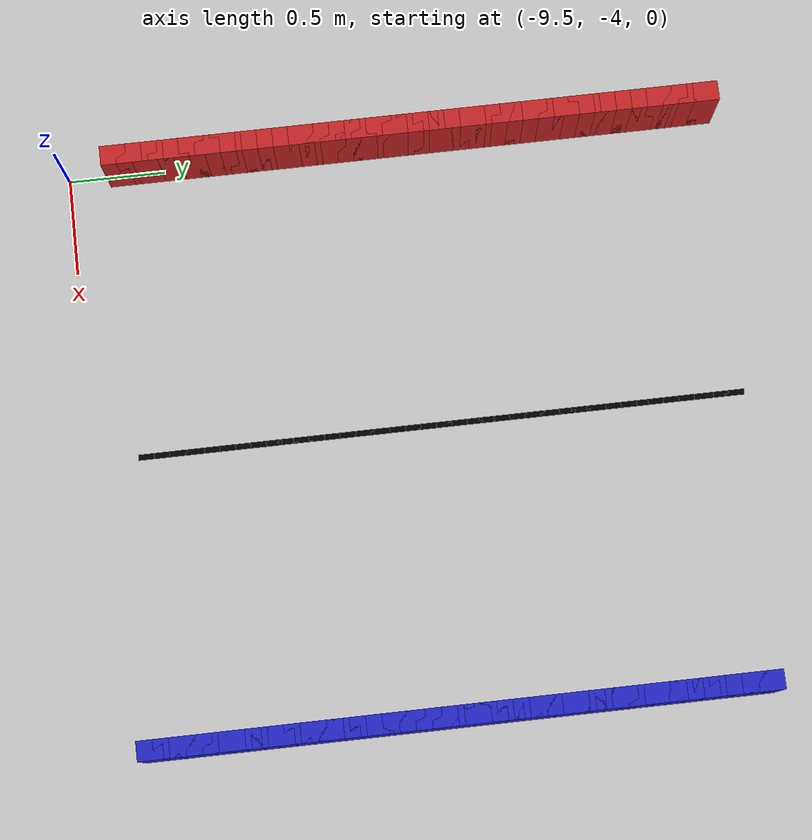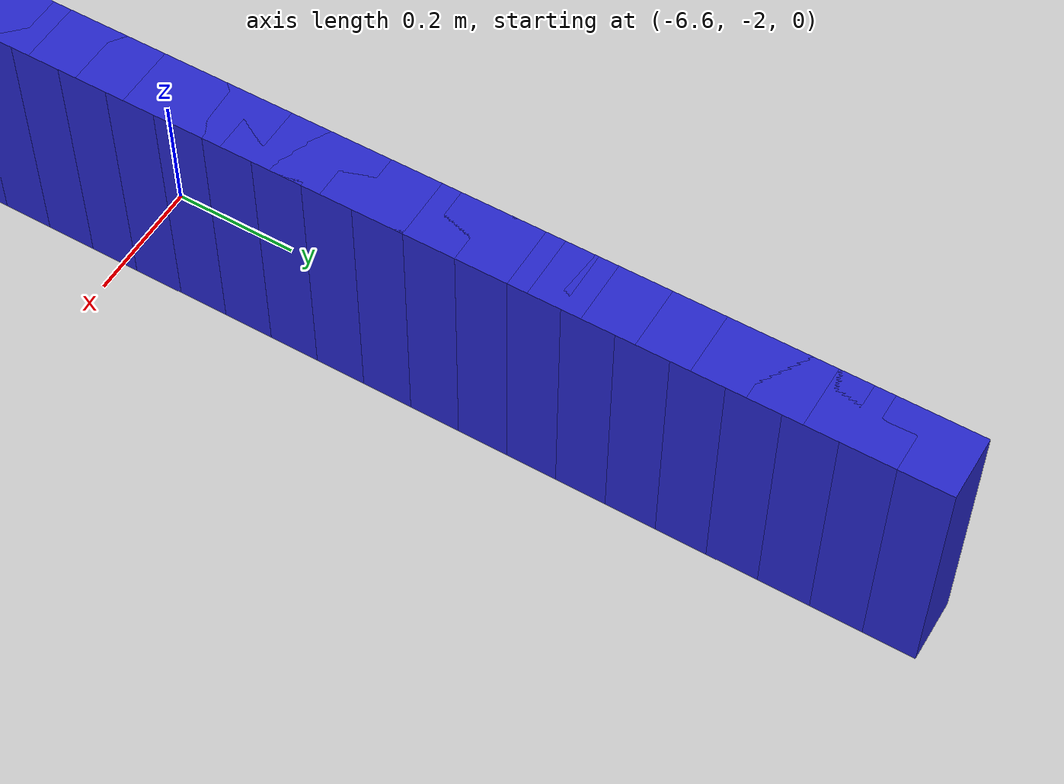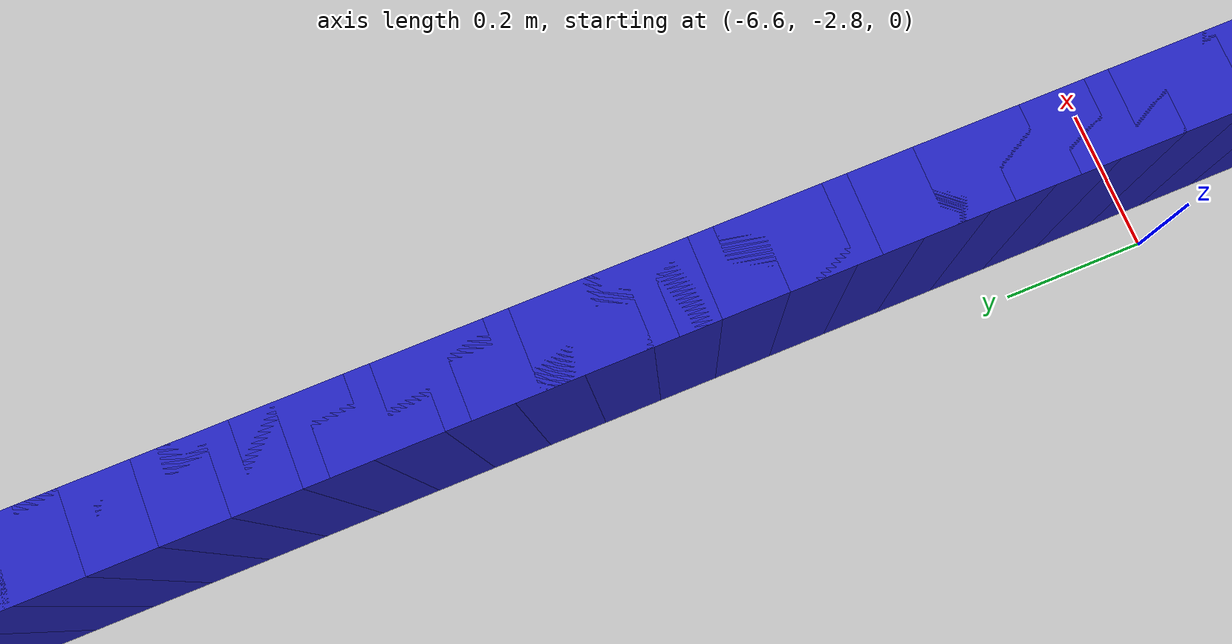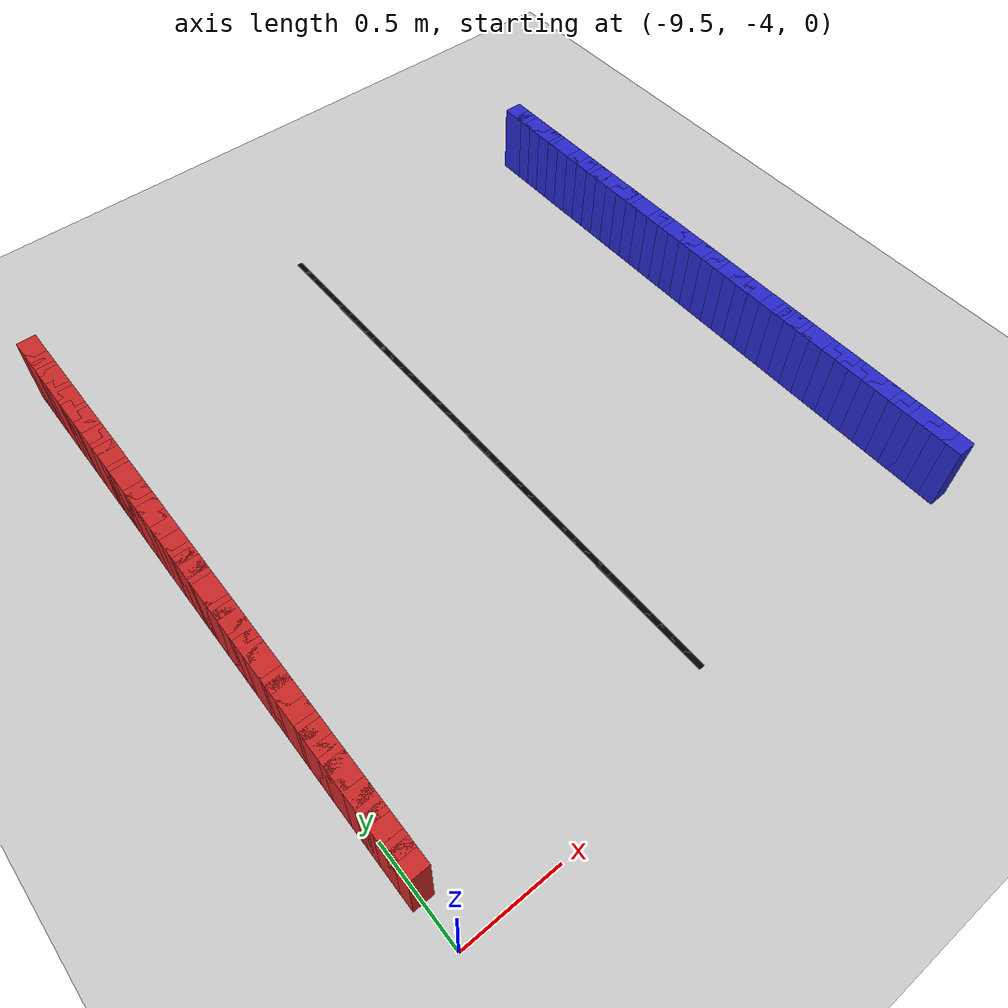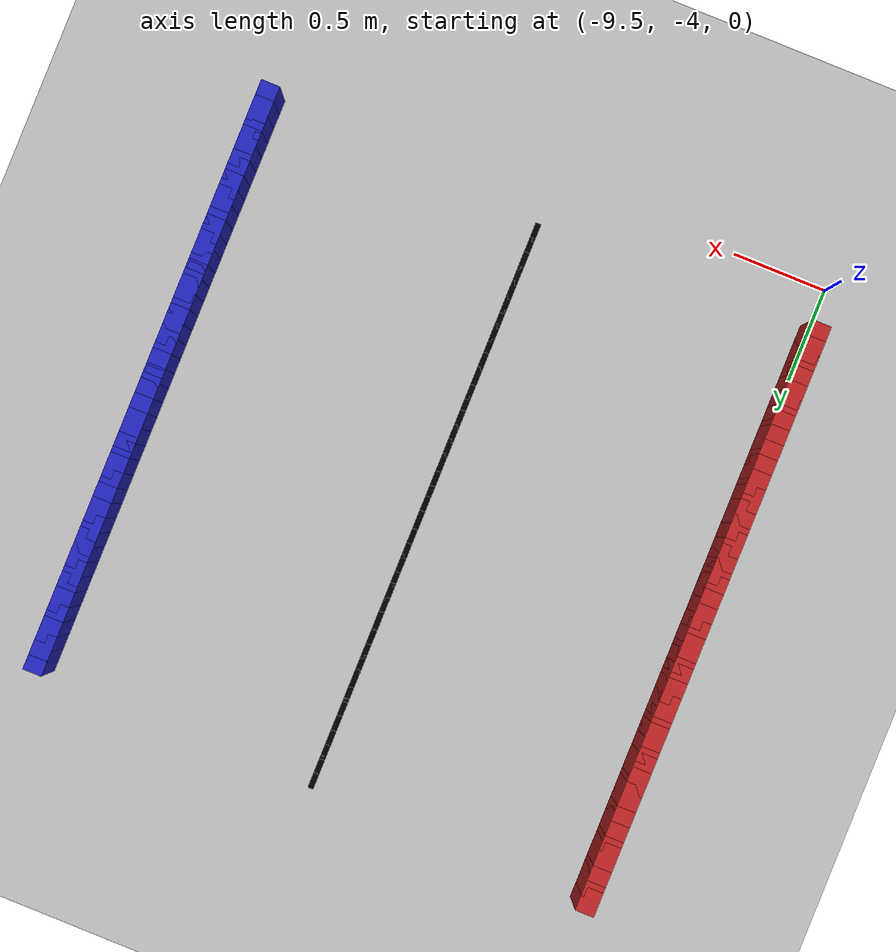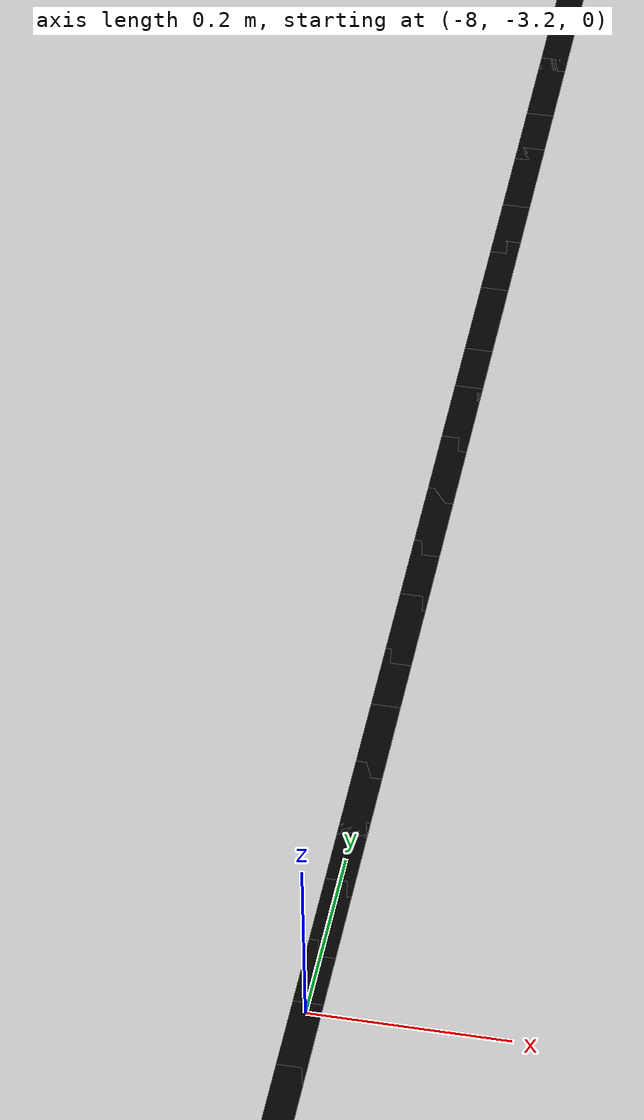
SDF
<sdf version="1.6">
 <world name="new_race_track">
  <include><uri>model://ground_plane</uri></include>
  <include><uri>model://sun</uri></include>
  <model name="iw_9">
   <static>true</static>
   <pose>-6.5000 -0.7600 0.200 0 0 -1.5708</pose>
   <link name="l">
    <collision name="c"><geometry><box><size>0.1300 0.1 0.4</size></box></geometry></collision>
    <visual name="v">
     <geometry><box><size>0.1300 0.1 0.4</size></box></geometry>
     <material><ambient>0.15 0.15 0.8 1</ambient><diffuse>0.15 0.15 0.8 1</diffuse></material>
    </visual>
   </link>
  </model>
  <model name="iw_10">
   <static>true</static>
   <pose>-6.5000 -0.8400 0.200 0 0 -1.5708</pose>
   <link name="l">
    <collision name="c"><geometry><box><size>0.1300 0.1 0.4</size></box></geometry></collision>
    <visual name="v">
     <geometry><box><size>0.1300 0.1 0.4</size></box></geometry>
     <material><ambient>0.15 0.15 0.8 1</ambient><diffuse>0.15 0.15 0.8 1</diffuse></material>
    </visual>
   </link>
  </model>
  <model name="iw_11">
   <static>true</static>
   <pose>-6.5000 -0.9200 0.200 0 0 -1.5708</pose>
   <link name="l">
    <collision name="c"><geometry><box><size>0.1300 0.1 0.4</size></box></geometry></collision>
    <visual name="v">
     <geometry><box><size>0.1300 0.1 0.4</size></box></geometry>
     <material><ambient>0.15 0.15 0.8 1</ambient><diffuse>0.15 0.15 0.8 1</diffuse></material>
    </visual>
   </link>
  </model>
  <model name="iw_12">
   <static>true</static>
   <pose>-6.5000 -1.0000 0.200 0 0 -1.5708</pose>
   <link name="l">
    <collision name="c"><geometry><box><size>0.1300 0.1 0.4</size></box></geometry></collision>
    <visual name="v">
     <geometry><box><size>0.1300 0.1 0.4</size></box></geometry>
     <material><ambient>0.15 0.15 0.8 1</ambient><diffuse>0.15 0.15 0.8 1</diffuse></material>
    </visual>
   </link>
  </model>
  <model name="iw_13">
   <static>true</static>
   <pose>-6.5000 -1.0800 0.200 0 0 -1.5708</pose>
   <link name="l">
    <collision name="c"><geometry><box><size>0.1300 0.1 0.4</size></box></geometry></collision>
    <visual name="v">
     <geometry><box><size>0.1300 0.1 0.4</size></box></geometry>
     <material><ambient>0.15 0.15 0.8 1</ambient><diffuse>0.15 0.15 0.8 1</diffuse></material>
    </visual>
   </link>
  </model>
  <model name="iw_14">
   <static>true</static>
   <pose>-6.5000 -1.1600 0.200 0 0 -1.5708</pose>
   <link name="l">
    <collision name="c"><geometry><box><size>0.1300 0.1 0.4</size></box></geometry></collision>
    <visual name="v">
     <geometry><box><size>0.1300 0.1 0.4</size></box></geometry>
     <material><ambient>0.15 0.15 0.8 1</ambient><diffuse>0.15 0.15 0.8 1</diffuse></material>
    </visual>
   </link>
  </model>
  <model name="iw_15">
   <static>true</static>
   <pose>-6.5000 -1.2400 0.200 0 0 -1.5708</pose>
   <link name="l">
    <collision name="c"><geometry><box><size>0.1300 0.1 0.4</size></box></geometry></collision>
    <visual name="v">
     <geometry><box><size>0.1300 0.1 0.4</size></box></geometry>
     <material><ambient>0.15 0.15 0.8 1</ambient><diffuse>0.15 0.15 0.8 1</diffuse></material>
    </visual>
   </link>
  </model>
  <model name="iw_16">
   <static>true</static>
   <pose>-6.5000 -1.3200 0.200 0 0 -1.5708</pose>
   <link name="l">
    <collision name="c"><geometry><box><size>0.1300 0.1 0.4</size></box></geometry></collision>
    <visual name="v">
     <geometry><box><size>0.1300 0.1 0.4</size></box></geometry>
     <material><ambient>0.15 0.15 0.8 1</ambient><diffuse>0.15 0.15 0.8 1</diffuse></material>
    </visual>
   </link>
  </model>
  <model name="iw_17">
   <static>true</static>
   <pose>-6.5000 -1.4000 0.200 0 0 -1.5708</pose>
   <link name="l">
    <collision name="c"><geometry><box><size>0.1300 0.1 0.4</size></box></geometry></collision>
    <visual name="v">
     <geometry><box><size>0.1300 0.1 0.4</size></box></geometry>
     <material><ambient>0.15 0.15 0.8 1</ambient><diffuse>0.15 0.15 0.8 1</diffuse></material>
    </visual>
   </link>
  </model>
  <model name="iw_18">
   <static>true</static>
   <pose>-6.5000 -1.4800 0.200 0 0 -1.5708</pose>
   <link name="l">
    <collision name="c"><geometry><box><size>0.1300 0.1 0.4</size></box></geometry></collision>
    <visual name="v">
     <geometry><box><size>0.1300 0.1 0.4</size></box></geometry>
     <material><ambient>0.15 0.15 0.8 1</ambient><diffuse>0.15 0.15 0.8 1</diffuse></material>
    </visual>
   </link>
  </model>
  <model name="iw_19">
   <static>true</static>
   <pose>-6.5000 -1.5600 0.200 0 0 -1.5708</pose>
   <link name="l">
    <collision name="c"><geometry><box><size>0.1300 0.1 0.4</size></box></geometry></collision>
    <visual name="v">
     <geometry><box><size>0.1300 0.1 0.4</size></box></geometry>
     <material><ambient>0.15 0.15 0.8 1</ambient><diffuse>0.15 0.15 0.8 1</diffuse></material>
    </visual>
   </link>
  </model>
  <model name="iw_20">
   <static>true</static>
   <pose>-6.5000 -1.6400 0.200 0 0 -1.5708</pose>
   <link name="l">
    <collision name="c"><geometry><box><size>0.1300 0.1 0.4</size></box></geometry></collision>
    <visual name="v">
     <geometry><box><size>0.1300 0.1 0.4</size></box></geometry>
     <material><ambient>0.15 0.15 0.8 1</ambient><diffuse>0.15 0.15 0.8 1</diffuse></material>
    </visual>
   </link>
  </model>
  <model name="iw_21">
   <static>true</static>
   <pose>-6.5000 -1.7200 0.200 0 0 -1.5708</pose>
   <link name="l">
    <collision name="c"><geometry><box><size>0.1300 0.1 0.4</size></box></geometry></collision>
    <visual name="v">
     <geometry><box><size>0.1300 0.1 0.4</size></box></geometry>
     <material><ambient>0.15 0.15 0.8 1</ambient><diffuse>0.15 0.15 0.8 1</diffuse></material>
    </visual>
   </link>
  </model>
  <model name="iw_22">
   <static>true</static>
   <pose>-6.5000 -1.8000 0.200 0 0 -1.5708</pose>
   <link name="l">
    <collision name="c"><geometry><box><size>0.1300 0.1 0.4</size></box></geometry></collision>
    <visual name="v">
     <geometry><box><size>0.1300 0.1 0.4</size></box></geometry>
     <material><ambient>0.15 0.15 0.8 1</ambient><diffuse>0.15 0.15 0.8 1</diffuse></material>
    </visual>
   </link>
  </model>
  <model name="iw_23">
   <static>true</static>
   <pose>-6.5000 -1.8800 0.200 0 0 -1.5708</pose>
   <link name="l">
    <collision name="c"><geometry><box><size>0.1300 0.1 0.4</size></box></geometry></collision>
    <visual name="v">
     <geometry><box><size>0.1300 0.1 0.4</size></box></geometry>
     <material><ambient>0.15 0.15 0.8 1</ambient><diffuse>0.15 0.15 0.8 1</diffuse></material>
    </visual>
   </link>
  </model>
  <model name="iw_24">
   <static>true</static>
   <pose>-6.5000 -1.9600 0.200 0 0 -1.5708</pose>
   <link name="l">
    <collision name="c"><geometry><box><size>0.1300 0.1 0.4</size></box></geometry></collision>
    <visual name="v">
     <geometry><box><size>0.1300 0.1 0.4</size></box></geometry>
     <material><ambient>0.15 0.15 0.8 1</ambient><diffuse>0.15 0.15 0.8 1</diffuse></material>
    </visual>
   </link>
  </model>
  <model name="iw_25">
   <static>true</static>
   <pose>-6.5000 -2.0400 0.200 0 0 -1.5708</pose>
   <link name="l">
    <collision name="c"><geometry><box><size>0.1300 0.1 0.4</size></box></geometry></collision>
    <visual name="v">
     <geometry><box><size>0.1300 0.1 0.4</size></box></geometry>
     <material><ambient>0.15 0.15 0.8 1</ambient><diffuse>0.15 0.15 0.8 1</diffuse></material>
    </visual>
   </link>
  </model>
  <model name="iw_26">
   <static>true</static>
   <pose>-6.5000 -2.1200 0.200 0 0 -1.5708</pose>
   <link name="l">
    <collision name="c"><geometry><box><size>0.1300 0.1 0.4</size></box></geometry></collision>
    <visual name="v">
     <geometry><box><size>0.1300 0.1 0.4</size></box></geometry>
     <material><ambient>0.15 0.15 0.8 1</ambient><diffuse>0.15 0.15 0.8 1</diffuse></material>
    </visual>
   </link>
  </model>
  <model name="iw_27">
   <static>true</static>
   <pose>-6.5000 -2.2000 0.200 0 0 -1.5708</pose>
   <link name="l">
    <collision name="c"><geometry><box><size>0.1300 0.1 0.4</size></box></geometry></collision>
    <visual name="v">
     <geometry><box><size>0.1300 0.1 0.4</size></box></geometry>
     <material><ambient>0.15 0.15 0.8 1</ambient><diffuse>0.15 0.15 0.8 1</diffuse></material>
    </visual>
   </link>
  </model>
  <model name="iw_28">
   <static>true</static>
   <pose>-6.5000 -2.2800 0.200 0 0 -1.5708</pose>
   <link name="l">
    <collision name="c"><geometry><box><size>0.1300 0.1 0.4</size></box></geometry></collision>
    <visual name="v">
     <geometry><box><size>0.1300 0.1 0.4</size></box></geometry>
     <material><ambient>0.15 0.15 0.8 1</ambient><diffuse>0.15 0.15 0.8 1</diffuse></material>
    </visual>
   </link>
  </model>
  <model name="iw_29">
   <static>true</static>
   <pose>-6.5000 -2.3600 0.200 0 0 -1.5708</pose>
   <link name="l">
    <collision name="c"><geometry><box><size>0.1300 0.1 0.4</size></box></geometry></collision>
    <visual name="v">
     <geometry><box><size>0.1300 0.1 0.4</size></box></geometry>
     <material><ambient>0.15 0.15 0.8 1</ambient><diffuse>0.15 0.15 0.8 1</diffuse></material>
    </visual>
   </link>
  </model>
  <model name="iw_30">
   <static>true</static>
   <pose>-6.5000 -2.4400 0.200 0 0 -1.5708</pose>
   <link name="l">
    <collision name="c"><geometry><box><size>0.1300 0.1 0.4</size></box></geometry></collision>
    <visual name="v">
     <geometry><box><size>0.1300 0.1 0.4</size></box></geometry>
     <material><ambient>0.15 0.15 0.8 1</ambient><diffuse>0.15 0.15 0.8 1</diffuse></material>
    </visual>
   </link>
  </model>
  <model name="iw_31">
   <static>true</static>
   <pose>-6.5000 -2.5200 0.200 0 0 -1.5708</pose>
   <link name="l">
    <collision name="c"><geometry><box><size>0.1300 0.1 0.4</size></box></geometry></collision>
    <visual name="v">
     <geometry><box><size>0.1300 0.1 0.4</size></box></geometry>
     <material><ambient>0.15 0.15 0.8 1</ambient><diffuse>0.15 0.15 0.8 1</diffuse></material>
    </visual>
   </link>
  </model>
  <model name="iw_32">
   <static>true</static>
   <pose>-6.5000 -2.6000 0.200 0 0 -1.5708</pose>
   <link name="l">
    <collision name="c"><geometry><box><size>0.1300 0.1 0.4</size></box></geometry></collision>
    <visual name="v">
     <geometry><box><size>0.1300 0.1 0.4</size></box></geometry>
     <material><ambient>0.15 0.15 0.8 1</ambient><diffuse>0.15 0.15 0.8 1</diffuse></material>
    </visual>
   </link>
  </model>
  <model name="iw_33">
   <static>true</static>
   <pose>-6.5000 -2.6800 0.200 0 0 -1.5708</pose>
   <link name="l">
    <collision name="c"><geometry><box><size>0.1300 0.1 0.4</size></box></geometry></collision>
    <visual name="v">
     <geometry><box><size>0.1300 0.1 0.4</size></box></geometry>
     <material><ambient>0.15 0.15 0.8 1</ambient><diffuse>0.15 0.15 0.8 1</diffuse></material>
    </visual>
   </link>
  </model>
  <model name="iw_34">
   <static>true</static>
   <pose>-6.5000 -2.7600 0.200 0 0 -1.5708</pose>
   <link name="l">
    <collision name="c"><geometry><box><size>0.1300 0.1 0.4</size></box></geometry></collision>
    <visual name="v">
     <geometry><box><size>0.1300 0.1 0.4</size></box></geometry>
     <material><ambient>0.15 0.15 0.8 1</ambient><diffuse>0.15 0.15 0.8 1</diffuse></material>
    </visual>
   </link>
  </model>
  <model name="iw_35">
   <static>true</static>
   <pose>-6.5000 -2.8400 0.200 0 0 -1.5708</pose>
   <link name="l">
    <collision name="c"><geometry><box><size>0.1300 0.1 0.4</size></box></geometry></collision>
    <visual name="v">
     <geometry><box><size>0.1300 0.1 0.4</size></box></geometry>
     <material><ambient>0.15 0.15 0.8 1</ambient><diffuse>0.15 0.15 0.8 1</diffuse></material>
    </visual>
   </link>
  </model>
  <model name="iw_36">
   <static>true</static>
   <pose>-6.5000 -2.9200 0.200 0 0 -1.5708</pose>
   <link name="l">
    <collision name="c"><geometry><box><size>0.1300 0.1 0.4</size></box></geometry></collision>
    <visual name="v">
     <geometry><box><size>0.1300 0.1 0.4</size></box></geometry>
     <material><ambient>0.15 0.15 0.8 1</ambient><diffuse>0.15 0.15 0.8 1</diffuse></material>
    </visual>
   </link>
  </model>
  <model name="iw_37">
   <static>true</static>
   <pose>-6.5000 -3.0000 0.200 0 0 -1.5708</pose>
   <link name="l">
    <collision name="c"><geometry><box><size>0.1300 0.1 0.4</size></box></geometry></collision>
    <visual name="v">
     <geometry><box><size>0.1300 0.1 0.4</size></box></geometry>
     <material><ambient>0.15 0.15 0.8 1</ambient><diffuse>0.15 0.15 0.8 1</diffuse></material>
    </visual>
   </link>
  </model>
  <model name="iw_38">
   <static>true</static>
   <pose>-6.5000 -3.0800 0.200 0 0 -1.5708</pose>
   <link name="l">
    <collision name="c"><geometry><box><size>0.1300 0.1 0.4</size></box></geometry></collision>
    <visual name="v">
     <geometry><box><size>0.1300 0.1 0.4</size></box></geometry>
     <material><ambient>0.15 0.15 0.8 1</ambient><diffuse>0.15 0.15 0.8 1</diffuse></material>
    </visual>
   </link>
  </model>
  <model name="iw_39">
   <static>true</static>
   <pose>-6.5000 -3.1600 0.200 0 0 -1.5708</pose>
   <link name="l">
    <collision name="c"><geometry><box><size>0.1300 0.1 0.4</size></box></geometry></collision>
    <visual name="v">
     <geometry><box><size>0.1300 0.1 0.4</size></box></geometry>
     <material><ambient>0.15 0.15 0.8 1</ambient><diffuse>0.15 0.15 0.8 1</diffuse></material>
    </visual>
   </link>
  </model>
  <model name="iw_40">
   <static>true</static>
   <pose>-6.5000 -3.2400 0.200 0 0 -1.5708</pose>
   <link name="l">
    <collision name="c"><geometry><box><size>0.1300 0.1 0.4</size></box></geometry></collision>
    <visual name="v">
     <geometry><box><size>0.1300 0.1 0.4</size></box></geometry>
     <material><ambient>0.15 0.15 0.8 1</ambient><diffuse>0.15 0.15 0.8 1</diffuse></material>
    </visual>
   </link>
  </model>
  <model name="iw_41">
   <static>true</static>
   <pose>-6.5000 -3.3200 0.200 0 0 -1.5708</pose>
   <link name="l">
    <collision name="c"><geometry><box><size>0.1300 0.1 0.4</size></box></geometry></collision>
    <visual name="v">
     <geometry><box><size>0.1300 0.1 0.4</size></box></geometry>
     <material><ambient>0.15 0.15 0.8 1</ambient><diffuse>0.15 0.15 0.8 1</diffuse></material>
    </visual>
   </link>
  </model>
  <model name="iw_42">
   <static>true</static>
   <pose>-6.5000 -3.4000 0.200 0 0 -1.5708</pose>
   <link name="l">
    <collision name="c"><geometry><box><size>0.1300 0.1 0.4</size></box></geometry></collision>
    <visual name="v">
     <geometry><box><size>0.1300 0.1 0.4</size></box></geometry>
     <material><ambient>0.15 0.15 0.8 1</ambient><diffuse>0.15 0.15 0.8 1</diffuse></material>
    </visual>
   </link>
  </model>
  <model name="iw_43">
   <static>true</static>
   <pose>-6.5000 -3.4800 0.200 0 0 -1.5708</pose>
   <link name="l">
    <collision name="c"><geometry><box><size>0.1300 0.1 0.4</size></box></geometry></collision>
    <visual name="v">
     <geometry><box><size>0.1300 0.1 0.4</size></box></geometry>
     <material><ambient>0.15 0.15 0.8 1</ambient><diffuse>0.15 0.15 0.8 1</diffuse></material>
    </visual>
   </link>
  </model>
  <model name="iw_44">
   <static>true</static>
   <pose>-6.5000 -3.5600 0.200 0 0 -1.5708</pose>
   <link name="l">
    <collision name="c"><geometry><box><size>0.1300 0.1 0.4</size></box></geometry></collision>
    <visual name="v">
     <geometry><box><size>0.1300 0.1 0.4</size></box></geometry>
     <material><ambient>0.15 0.15 0.8 1</ambient><diffuse>0.15 0.15 0.8 1</diffuse></material>
    </visual>
   </link>
  </model>
  <model name="iw_45">
   <static>true</static>
   <pose>-6.5000 -3.6400 0.200 0 0 -1.5708</pose>
   <link name="l">
    <collision name="c"><geometry><box><size>0.1300 0.1 0.4</size></box></geometry></collision>
    <visual name="v">
     <geometry><box><size>0.1300 0.1 0.4</size></box></geometry>
     <material><ambient>0.15 0.15 0.8 1</ambient><diffuse>0.15 0.15 0.8 1</diffuse></material>
    </visual>
   </link>
  </model>
  <model name="iw_46">
   <static>true</static>
   <pose>-6.5000 -3.7200 0.200 0 0 -1.5708</pose>
   <link name="l">
    <collision name="c"><geometry><box><size>0.1300 0.1 0.4</size></box></geometry></collision>
    <visual name="v">
     <geometry><box><size>0.1300 0.1 0.4</size></box></geometry>
     <material><ambient>0.15 0.15 0.8 1</ambient><diffuse>0.15 0.15 0.8 1</diffuse></material>
    </visual>
   </link>
  </model>
  <model name="iw_47">
   <static>true</static>
   <pose>-6.5000 -3.8000 0.200 0 0 -1.5708</pose>
   <link name="l">
    <collision name="c"><geometry><box><size>0.1300 0.1 0.4</size></box></geometry></collision>
    <visual name="v">
     <geometry><box><size>0.1300 0.1 0.4</size></box></geometry>
     <material><ambient>0.15 0.15 0.8 1</ambient><diffuse>0.15 0.15 0.8 1</diffuse></material>
    </visual>
   </link>
  </model>
  <model name="ow_8">
   <static>true</static>
   <pose>-9.5000 -0.6800 0.200 0 0 -1.5708</pose>
   <link name="l">
    <collision name="c"><geometry><box><size>0.1300 0.1 0.4</size></box></geometry></collision>
    <visual name="v">
     <geometry><box><size>0.1300 0.1 0.4</size></box></geometry>
     <material><ambient>0.8 0.15 0.15 1</ambient><diffuse>0.8 0.15 0.15 1</diffuse></material>
    </visual>
   </link>
  </model>
  <model name="ow_9">
   <static>true</static>
   <pose>-9.5000 -0.7600 0.200 0 0 -1.5708</pose>
   <link name="l">
    <collision name="c"><geometry><box><size>0.1300 0.1 0.4</size></box></geometry></collision>
    <visual name="v">
     <geometry><box><size>0.1300 0.1 0.4</size></box></geometry>
     <material><ambient>0.8 0.15 0.15 1</ambient><diffuse>0.8 0.15 0.15 1</diffuse></material>
    </visual>
   </link>
  </model>
  <model name="ow_10">
   <static>true</static>
   <pose>-9.5000 -0.8400 0.200 0 0 -1.5708</pose>
   <link name="l">
    <collision name="c"><geometry><box><size>0.1300 0.1 0.4</size></box></geometry></collision>
    <visual name="v">
     <geometry><box><size>0.1300 0.1 0.4</size></box></geometry>
     <material><ambient>0.8 0.15 0.15 1</ambient><diffuse>0.8 0.15 0.15 1</diffuse></material>
    </visual>
   </link>
  </model>
  <model name="ow_11">
   <static>true</static>
   <pose>-9.5000 -0.9200 0.200 0 0 -1.5708</pose>
   <link name="l">
    <collision name="c"><geometry><box><size>0.1300 0.1 0.4</size></box></geometry></collision>
    <visual name="v">
     <geometry><box><size>0.1300 0.1 0.4</size></box></geometry>
     <material><ambient>0.8 0.15 0.15 1</ambient><diffuse>0.8 0.15 0.15 1</diffuse></material>
    </visual>
   </link>
  </model>
  <model name="ow_12">
   <static>true</static>
   <pose>-9.5000 -1.0000 0.200 0 0 -1.5708</pose>
   <link name="l">
    <collision name="c"><geometry><box><size>0.1300 0.1 0.4</size></box></geometry></collision>
    <visual name="v">
     <geometry><box><size>0.1300 0.1 0.4</size></box></geometry>
     <material><ambient>0.8 0.15 0.15 1</ambient><diffuse>0.8 0.15 0.15 1</diffuse></material>
    </visual>
   </link>
  </model>
  <model name="ow_13">
   <static>true</static>
   <pose>-9.5000 -1.0800 0.200 0 0 -1.5708</pose>
   <link name="l">
    <collision name="c"><geometry><box><size>0.1300 0.1 0.4</size></box></geometry></collision>
    <visual name="v">
     <geometry><box><size>0.1300 0.1 0.4</size></box></geometry>
     <material><ambient>0.8 0.15 0.15 1</ambient><diffuse>0.8 0.15 0.15 1</diffuse></material>
    </visual>
   </link>
  </model>
  <model name="ow_14">
   <static>true</static>
   <pose>-9.5000 -1.1600 0.200 0 0 -1.5708</pose>
   <link name="l">
    <collision name="c"><geometry><box><size>0.1300 0.1 0.4</size></box></geometry></collision>
    <visual name="v">
     <geometry><box><size>0.1300 0.1 0.4</size></box></geometry>
     <material><ambient>0.8 0.15 0.15 1</ambient><diffuse>0.8 0.15 0.15 1</diffuse></material>
    </visual>
   </link>
  </model>
  <model name="ow_15">
   <static>true</static>
   <pose>-9.5000 -1.2400 0.200 0 0 -1.5708</pose>
   <link name="l">
    <collision name="c"><geometry><box><size>0.1300 0.1 0.4</size></box></geometry></collision>
    <visual name="v">
     <geometry><box><size>0.1300 0.1 0.4</size></box></geometry>
     <material><ambient>0.8 0.15 0.15 1</ambient><diffuse>0.8 0.15 0.15 1</diffuse></material>
    </visual>
   </link>
  </model>
  <model name="ow_16">
   <static>true</static>
   <pose>-9.5000 -1.3200 0.200 0 0 -1.5708</pose>
   <link name="l">
    <collision name="c"><geometry><box><size>0.1300 0.1 0.4</size></box></geometry></collision>
    <visual name="v">
     <geometry><box><size>0.1300 0.1 0.4</size></box></geometry>
     <material><ambient>0.8 0.15 0.15 1</ambient><diffuse>0.8 0.15 0.15 1</diffuse></material>
    </visual>
   </link>
  </model>
  <model name="ow_17">
   <static>true</static>
   <pose>-9.5000 -1.4000 0.200 0 0 -1.5708</pose>
   <link name="l">
    <collision name="c"><geometry><box><size>0.1300 0.1 0.4</size></box></geometry></collision>
    <visual name="v">
     <geometry><box><size>0.1300 0.1 0.4</size></box></geometry>
     <material><ambient>0.8 0.15 0.15 1</ambient><diffuse>0.8 0.15 0.15 1</diffuse></material>
    </visual>
   </link>
  </model>
  <model name="ow_18">
   <static>true</static>
   <pose>-9.5000 -1.4800 0.200 0 0 -1.5708</pose>
   <link name="l">
    <collision name="c"><geometry><box><size>0.1300 0.1 0.4</size></box></geometry></collision>
    <visual name="v">
     <geometry><box><size>0.1300 0.1 0.4</size></box></geometry>
     <material><ambient>0.8 0.15 0.15 1</ambient><diffuse>0.8 0.15 0.15 1</diffuse></material>
    </visual>
   </link>
  </model>
  <model name="ow_19">
   <static>true</static>
   <pose>-9.5000 -1.5600 0.200 0 0 -1.5708</pose>
   <link name="l">
    <collision name="c"><geometry><box><size>0.1300 0.1 0.4</size></box></geometry></collision>
    <visual name="v">
     <geometry><box><size>0.1300 0.1 0.4</size></box></geometry>
     <material><ambient>0.8 0.15 0.15 1</ambient><diffuse>0.8 0.15 0.15 1</diffuse></material>
    </visual>
   </link>
  </model>
  <model name="ow_20">
   <static>true</static>
   <pose>-9.5000 -1.6400 0.200 0 0 -1.5708</pose>
   <link name="l">
    <collision name="c"><geometry><box><size>0.1300 0.1 0.4</size></box></geometry></collision>
    <visual name="v">
     <geometry><box><size>0.1300 0.1 0.4</size></box></geometry>
     <material><ambient>0.8 0.15 0.15 1</ambient><diffuse>0.8 0.15 0.15 1</diffuse></material>
    </visual>
   </link>
  </model>
  <model name="ow_21">
   <static>true</static>
   <pose>-9.5000 -1.7200 0.200 0 0 -1.5708</pose>
   <link name="l">
    <collision name="c"><geometry><box><size>0.1300 0.1 0.4</size></box></geometry></collision>
    <visual name="v">
     <geometry><box><size>0.1300 0.1 0.4</size></box></geometry>
     <material><ambient>0.8 0.15 0.15 1</ambient><diffuse>0.8 0.15 0.15 1</diffuse></material>
    </visual>
   </link>
  </model>
  <model name="ow_22">
   <static>true</static>
   <pose>-9.5000 -1.8000 0.200 0 0 -1.5708</pose>
   <link name="l">
    <collision name="c"><geometry><box><size>0.1300 0.1 0.4</size></box></geometry></collision>
    <visual name="v">
     <geometry><box><size>0.1300 0.1 0.4</size></box></geometry>
     <material><ambient>0.8 0.15 0.15 1</ambient><diffuse>0.8 0.15 0.15 1</diffuse></material>
    </visual>
   </link>
  </model>
  <model name="ow_23">
   <static>true</static>
   <pose>-9.5000 -1.8800 0.200 0 0 -1.5708</pose>
   <link name="l">
    <collision name="c"><geometry><box><size>0.1300 0.1 0.4</size></box></geometry></collision>
    <visual name="v">
     <geometry><box><size>0.1300 0.1 0.4</size></box></geometry>
     <material><ambient>0.8 0.15 0.15 1</ambient><diffuse>0.8 0.15 0.15 1</diffuse></material>
    </visual>
   </link>
  </model>
  <model name="ow_24">
   <static>true</static>
   <pose>-9.5000 -1.9600 0.200 0 0 -1.5708</pose>
   <link name="l">
    <collision name="c"><geometry><box><size>0.1300 0.1 0.4</size></box></geometry></collision>
    <visual name="v">
     <geometry><box><size>0.1300 0.1 0.4</size></box></geometry>
     <material><ambient>0.8 0.15 0.15 1</ambient><diffuse>0.8 0.15 0.15 1</diffuse></material>
    </visual>
   </link>
  </model>
  <model name="ow_25">
   <static>true</static>
   <pose>-9.5000 -2.0400 0.200 0 0 -1.5708</pose>
   <link name="l">
    <collision name="c"><geometry><box><size>0.1300 0.1 0.4</size></box></geometry></collision>
    <visual name="v">
     <geometry><box><size>0.1300 0.1 0.4</size></box></geometry>
     <material><ambient>0.8 0.15 0.15 1</ambient><diffuse>0.8 0.15 0.15 1</diffuse></material>
    </visual>
   </link>
  </model>
  <model name="ow_26">
   <static>true</static>
   <pose>-9.5000 -2.1200 0.200 0 0 -1.5708</pose>
   <link name="l">
    <collision name="c"><geometry><box><size>0.1300 0.1 0.4</size></box></geometry></collision>
    <visual name="v">
     <geometry><box><size>0.1300 0.1 0.4</size></box></geometry>
     <material><ambient>0.8 0.15 0.15 1</ambient><diffuse>0.8 0.15 0.15 1</diffuse></material>
    </visual>
   </link>
  </model>
  <model name="ow_27">
   <static>true</static>
   <pose>-9.5000 -2.2000 0.200 0 0 -1.5708</pose>
   <link name="l">
    <collision name="c"><geometry><box><size>0.1300 0.1 0.4</size></box></geometry></collision>
    <visual name="v">
     <geometry><box><size>0.1300 0.1 0.4</size></box></geometry>
     <material><ambient>0.8 0.15 0.15 1</ambient><diffuse>0.8 0.15 0.15 1</diffuse></material>
    </visual>
   </link>
  </model>
  <model name="ow_28">
   <static>true</static>
   <pose>-9.5000 -2.2800 0.200 0 0 -1.5708</pose>
   <link name="l">
    <collision name="c"><geometry><box><size>0.1300 0.1 0.4</size></box></geometry></collision>
    <visual name="v">
     <geometry><box><size>0.1300 0.1 0.4</size></box></geometry>
     <material><ambient>0.8 0.15 0.15 1</ambient><diffuse>0.8 0.15 0.15 1</diffuse></material>
    </visual>
   </link>
  </model>
  <model name="ow_29">
   <static>true</static>
   <pose>-9.5000 -2.3600 0.200 0 0 -1.5708</pose>
   <link name="l">
    <collision name="c"><geometry><box><size>0.1300 0.1 0.4</size></box></geometry></collision>
    <visual name="v">
     <geometry><box><size>0.1300 0.1 0.4</size></box></geometry>
     <material><ambient>0.8 0.15 0.15 1</ambient><diffuse>0.8 0.15 0.15 1</diffuse></material>
    </visual>
   </link>
  </model>
  <model name="ow_30">
   <static>true</static>
   <pose>-9.5000 -2.4400 0.200 0 0 -1.5708</pose>
   <link name="l">
    <collision name="c"><geometry><box><size>0.1300 0.1 0.4</size></box></geometry></collision>
    <visual name="v">
     <geometry><box><size>0.1300 0.1 0.4</size></box></geometry>
     <material><ambient>0.8 0.15 0.15 1</ambient><diffuse>0.8 0.15 0.15 1</diffuse></material>
    </visual>
   </link>
  </model>
  <model name="ow_31">
   <static>true</static>
   <pose>-9.5000 -2.5200 0.200 0 0 -1.5708</pose>
   <link name="l">
    <collision name="c"><geometry><box><size>0.1300 0.1 0.4</size></box></geometry></collision>
    <visual name="v">
     <geometry><box><size>0.1300 0.1 0.4</size></box></geometry>
     <material><ambient>0.8 0.15 0.15 1</ambient><diffuse>0.8 0.15 0.15 1</diffuse></material>
    </visual>
   </link>
  </model>
  <model name="ow_32">
   <static>true</static>
   <pose>-9.5000 -2.6000 0.200 0 0 -1.5708</pose>
   <link name="l">
    <collision name="c"><geometry><box><size>0.1300 0.1 0.4</size></box></geometry></collision>
    <visual name="v">
     <geometry><box><size>0.1300 0.1 0.4</size></box></geometry>
     <material><ambient>0.8 0.15 0.15 1</ambient><diffuse>0.8 0.15 0.15 1</diffuse></material>
    </visual>
   </link>
  </model>
  <model name="ow_33">
   <static>true</static>
   <pose>-9.5000 -2.6800 0.200 0 0 -1.5708</pose>
   <link name="l">
    <collision name="c"><geometry><box><size>0.1300 0.1 0.4</size></box></geometry></collision>
    <visual name="v">
     <geometry><box><size>0.1300 0.1 0.4</size></box></geometry>
     <material><ambient>0.8 0.15 0.15 1</ambient><diffuse>0.8 0.15 0.15 1</diffuse></material>
    </visual>
   </link>
  </model>
  <model name="ow_34">
   <static>true</static>
   <pose>-9.5000 -2.7600 0.200 0 0 -1.5708</pose>
   <link name="l">
    <collision name="c"><geometry><box><size>0.1300 0.1 0.4</size></box></geometry></collision>
    <visual name="v">
     <geometry><box><size>0.1300 0.1 0.4</size></box></geometry>
     <material><ambient>0.8 0.15 0.15 1</ambient><diffuse>0.8 0.15 0.15 1</diffuse></material>
    </visual>
   </link>
  </model>
  <model name="ow_35">
   <static>true</static>
   <pose>-9.5000 -2.8400 0.200 0 0 -1.5708</pose>
   <link name="l">
    <collision name="c"><geometry><box><size>0.1300 0.1 0.4</size></box></geometry></collision>
    <visual name="v">
     <geometry><box><size>0.1300 0.1 0.4</size></box></geometry>
     <material><ambient>0.8 0.15 0.15 1</ambient><diffuse>0.8 0.15 0.15 1</diffuse></material>
    </visual>
   </link>
  </model>
  <model name="ow_36">
   <static>true</static>
   <pose>-9.5000 -2.9200 0.200 0 0 -1.5708</pose>
   <link name="l">
    <collision name="c"><geometry><box><size>0.1300 0.1 0.4</size></box></geometry></collision>
    <visual name="v">
     <geometry><box><size>0.1300 0.1 0.4</size></box></geometry>
     <material><ambient>0.8 0.15 0.15 1</ambient><diffuse>0.8 0.15 0.15 1</diffuse></material>
    </visual>
   </link>
  </model>
  <model name="ow_37">
   <static>true</static>
   <pose>-9.5000 -3.0000 0.200 0 0 -1.5708</pose>
   <link name="l">
    <collision name="c"><geometry><box><size>0.1300 0.1 0.4</size></box></geometry></collision>
    <visual name="v">
     <geometry><box><size>0.1300 0.1 0.4</size></box></geometry>
     <material><ambient>0.8 0.15 0.15 1</ambient><diffuse>0.8 0.15 0.15 1</diffuse></material>
    </visual>
   </link>
  </model>
  <model name="ow_38">
   <static>true</static>
   <pose>-9.5000 -3.0800 0.200 0 0 -1.5708</pose>
   <link name="l">
    <collision name="c"><geometry><box><size>0.1300 0.1 0.4</size></box></geometry></collision>
    <visual name="v">
     <geometry><box><size>0.1300 0.1 0.4</size></box></geometry>
     <material><ambient>0.8 0.15 0.15 1</ambient><diffuse>0.8 0.15 0.15 1</diffuse></material>
    </visual>
   </link>
  </model>
  <model name="ow_39">
   <static>true</static>
   <pose>-9.5000 -3.1600 0.200 0 0 -1.5708</pose>
   <link name="l">
    <collision name="c"><geometry><box><size>0.1300 0.1 0.4</size></box></geometry></collision>
    <visual name="v">
     <geometry><box><size>0.1300 0.1 0.4</size></box></geometry>
     <material><ambient>0.8 0.15 0.15 1</ambient><diffuse>0.8 0.15 0.15 1</diffuse></material>
    </visual>
   </link>
  </model>
  <model name="ow_40">
   <static>true</static>
   <pose>-9.5000 -3.2400 0.200 0 0 -1.5708</pose>
   <link name="l">
    <collision name="c"><geometry><box><size>0.1300 0.1 0.4</size></box></geometry></collision>
    <visual name="v">
     <geometry><box><size>0.1300 0.1 0.4</size></box></geometry>
     <material><ambient>0.8 0.15 0.15 1</ambient><diffuse>0.8 0.15 0.15 1</diffuse></material>
    </visual>
   </link>
  </model>
  <model name="ow_41">
   <static>true</static>
   <pose>-9.5000 -3.3200 0.200 0 0 -1.5708</pose>
   <link name="l">
    <collision name="c"><geometry><box><size>0.1300 0.1 0.4</size></box></geometry></collision>
    <visual name="v">
     <geometry><box><size>0.1300 0.1 0.4</size></box></geometry>
     <material><ambient>0.8 0.15 0.15 1</ambient><diffuse>0.8 0.15 0.15 1</diffuse></material>
    </visual>
   </link>
  </model>
  <model name="ow_42">
   <static>true</static>
   <pose>-9.5000 -3.4000 0.200 0 0 -1.5708</pose>
   <link name="l">
    <collision name="c"><geometry><box><size>0.1300 0.1 0.4</size></box></geometry></collision>
    <visual name="v">
     <geometry><box><size>0.1300 0.1 0.4</size></box></geometry>
     <material><ambient>0.8 0.15 0.15 1</ambient><diffuse>0.8 0.15 0.15 1</diffuse></material>
    </visual>
   </link>
  </model>
  <model name="ow_43">
   <static>true</static>
   <pose>-9.5000 -3.4800 0.200 0 0 -1.5708</pose>
   <link name="l">
    <collision name="c"><geometry><box><size>0.1300 0.1 0.4</size></box></geometry></collision>
    <visual name="v">
     <geometry><box><size>0.1300 0.1 0.4</size></box></geometry>
     <material><ambient>0.8 0.15 0.15 1</ambient><diffuse>0.8 0.15 0.15 1</diffuse></material>
    </visual>
   </link>
  </model>
  <model name="ow_44">
   <static>true</static>
   <pose>-9.5000 -3.5600 0.200 0 0 -1.5708</pose>
   <link name="l">
    <collision name="c"><geometry><box><size>0.1300 0.1 0.4</size></box></geometry></collision>
    <visual name="v">
     <geometry><box><size>0.1300 0.1 0.4</size></box></geometry>
     <material><ambient>0.8 0.15 0.15 1</ambient><diffuse>0.8 0.15 0.15 1</diffuse></material>
    </visual>
   </link>
  </model>
  <model name="ow_45">
   <static>true</static>
   <pose>-9.5000 -3.6400 0.200 0 0 -1.5708</pose>
   <link name="l">
    <collision name="c"><geometry><box><size>0.1300 0.1 0.4</size></box></geometry></collision>
    <visual name="v">
     <geometry><box><size>0.1300 0.1 0.4</size></box></geometry>
     <material><ambient>0.8 0.15 0.15 1</ambient><diffuse>0.8 0.15 0.15 1</diffuse></material>
    </visual>
   </link>
  </model>
  <model name="ow_46">
   <static>true</static>
   <pose>-9.5000 -3.7200 0.200 0 0 -1.5708</pose>
   <link name="l">
    <collision name="c"><geometry><box><size>0.1300 0.1 0.4</size></box></geometry></collision>
    <visual name="v">
     <geometry><box><size>0.1300 0.1 0.4</size></box></geometry>
     <material><ambient>0.8 0.15 0.15 1</ambient><diffuse>0.8 0.15 0.15 1</diffuse></material>
    </visual>
   </link>
  </model>
  <model name="line_8">
   <static>true</static>
   <pose>-8.0000 -0.6800 0.002 0 0 -1.5708</pose>
   <link name="l">
    <visual name="v">
     <geometry><box><size>0.1000 0.03 0.002</size></box></geometry>
     <material><ambient>0 0 0 1</ambient><diffuse>0 0 0 1</diffuse></material>
    </visual>
   </link>
  </model>
  <model name="line_9">
   <static>true</static>
   <pose>-8.0000 -0.7600 0.002 0 0 -1.5708</pose>
   <link name="l">
    <visual name="v">
     <geometry><box><size>0.1000 0.03 0.002</size></box></geometry>
     <material><ambient>0 0 0 1</ambient><diffuse>0 0 0 1</diffuse></material>
    </visual>
   </link>
  </model>
  <model name="line_10">
   <static>true</static>
   <pose>-8.0000 -0.8400 0.002 0 0 -1.5708</pose>
   <link name="l">
    <visual name="v">
     <geometry><box><size>0.1000 0.03 0.002</size></box></geometry>
     <material><ambient>0 0 0 1</ambient><diffuse>0 0 0 1</diffuse></material>
    </visual>
   </link>
  </model>
  <model name="line_11">
   <static>true</static>
   <pose>-8.0000 -0.9200 0.002 0 0 -1.5708</pose>
   <link name="l">
    <visual name="v">
     <geometry><box><size>0.1000 0.03 0.002</size></box></geometry>
     <material><ambient>0 0 0 1</ambient><diffuse>0 0 0 1</diffuse></material>
    </visual>
   </link>
  </model>
  <model name="line_12">
   <static>true</static>
   <pose>-8.0000 -1.0000 0.002 0 0 -1.5708</pose>
   <link name="l">
    <visual name="v">
     <geometry><box><size>0.1000 0.03 0.002</size></box></geometry>
     <material><ambient>0 0 0 1</ambient><diffuse>0 0 0 1</diffuse></material>
    </visual>
   </link>
  </model>
  <model name="line_13">
   <static>true</static>
   <pose>-8.0000 -1.0800 0.002 0 0 -1.5708</pose>
   <link name="l">
    <visual name="v">
     <geometry><box><size>0.1000 0.03 0.002</size></box></geometry>
     <material><ambient>0 0 0 1</ambient><diffuse>0 0 0 1</diffuse></material>
    </visual>
   </link>
  </model>
  <model name="line_14">
   <static>true</static>
   <pose>-8.0000 -1.1600 0.002 0 0 -1.5708</pose>
   <link name="l">
    <visual name="v">
     <geometry><box><size>0.1000 0.03 0.002</size></box></geometry>
     <material><ambient>0 0 0 1</ambient><diffuse>0 0 0 1</diffuse></material>
    </visual>
   </link>
  </model>
  <model name="line_15">
   <static>true</static>
   <pose>-8.0000 -1.2400 0.002 0 0 -1.5708</pose>
   <link name="l">
    <visual name="v">
     <geometry><box><size>0.1000 0.03 0.002</size></box></geometry>
     <material><ambient>0 0 0 1</ambient><diffuse>0 0 0 1</diffuse></material>
    </visual>
   </link>
  </model>
  <model name="line_16">
   <static>true</static>
   <pose>-8.0000 -1.3200 0.002 0 0 -1.5708</pose>
   <link name="l">
    <visual name="v">
     <geometry><box><size>0.1000 0.03 0.002</size></box></geometry>
     <material><ambient>0 0 0 1</ambient><diffuse>0 0 0 1</diffuse></material>
    </visual>
   </link>
  </model>
  <model name="line_17">
   <static>true</static>
   <pose>-8.0000 -1.4000 0.002 0 0 -1.5708</pose>
   <link name="l">
    <visual name="v">
     <geometry><box><size>0.1000 0.03 0.002</size></box></geometry>
     <material><ambient>0 0 0 1</ambient><diffuse>0 0 0 1</diffuse></material>
    </visual>
   </link>
  </model>
  <model name="line_18">
   <static>true</static>
   <pose>-8.0000 -1.4800 0.002 0 0 -1.5708</pose>
   <link name="l">
    <visual name="v">
     <geometry><box><size>0.1000 0.03 0.002</size></box></geometry>
     <material><ambient>0 0 0 1</ambient><diffuse>0 0 0 1</diffuse></material>
    </visual>
   </link>
  </model>
  <model name="line_19">
   <static>true</static>
   <pose>-8.0000 -1.5600 0.002 0 0 -1.5708</pose>
   <link name="l">
    <visual name="v">
     <geometry><box><size>0.1000 0.03 0.002</size></box></geometry>
     <material><ambient>0 0 0 1</ambient><diffuse>0 0 0 1</diffuse></material>
    </visual>
   </link>
  </model>
  <model name="line_20">
   <static>true</static>
   <pose>-8.0000 -1.6400 0.002 0 0 -1.5708</pose>
   <link name="l">
    <visual name="v">
     <geometry><box><size>0.1000 0.03 0.002</size></box></geometry>
     <material><ambient>0 0 0 1</ambient><diffuse>0 0 0 1</diffuse></material>
    </visual>
   </link>
  </model>
  <model name="line_21">
   <static>true</static>
   <pose>-8.0000 -1.7200 0.002 0 0 -1.5708</pose>
   <link name="l">
    <visual name="v">
     <geometry><box><size>0.1000 0.03 0.002</size></box></geometry>
     <material><ambient>0 0 0 1</ambient><diffuse>0 0 0 1</diffuse></material>
    </visual>
   </link>
  </model>
  <model name="line_22">
   <static>true</static>
   <pose>-8.0000 -1.8000 0.002 0 0 -1.5708</pose>
   <link name="l">
    <visual name="v">
     <geometry><box><size>0.1000 0.03 0.002</size></box></geometry>
     <material><ambient>0 0 0 1</ambient><diffuse>0 0 0 1</diffuse></material>
    </visual>
   </link>
  </model>
  <model name="line_23">
   <static>true</static>
   <pose>-8.0000 -1.8800 0.002 0 0 -1.5708</pose>
   <link name="l">
    <visual name="v">
     <geometry><box><size>0.1000 0.03 0.002</size></box></geometry>
     <material><ambient>0 0 0 1</ambient><diffuse>0 0 0 1</diffuse></material>
    </visual>
   </link>
  </model>
  <model name="line_24">
   <static>true</static>
   <pose>-8.0000 -1.9600 0.002 0 0 -1.5708</pose>
   <link name="l">
    <visual name="v">
     <geometry><box><size>0.1000 0.03 0.002</size></box></geometry>
     <material><ambient>0 0 0 1</ambient><diffuse>0 0 0 1</diffuse></material>
    </visual>
   </link>
  </model>
  <model name="line_25">
   <static>true</static>
   <pose>-8.0000 -2.0400 0.002 0 0 -1.5708</pose>
   <link name="l">
    <visual name="v">
     <geometry><box><size>0.1000 0.03 0.002</size></box></geometry>
     <material><ambient>0 0 0 1</ambient><diffuse>0 0 0 1</diffuse></material>
    </visual>
   </link>
  </model>
  <model name="line_26">
   <static>true</static>
   <pose>-8.0000 -2.1200 0.002 0 0 -1.5708</pose>
   <link name="l">
    <visual name="v">
     <geometry><box><size>0.1000 0.03 0.002</size></box></geometry>
     <material><ambient>0 0 0 1</ambient><diffuse>0 0 0 1</diffuse></material>
    </visual>
   </link>
  </model>
  <model name="line_27">
   <static>true</static>
   <pose>-8.0000 -2.2000 0.002 0 0 -1.5708</pose>
   <link name="l">
    <visual name="v">
     <geometry><box><size>0.1000 0.03 0.002</size></box></geometry>
     <material><ambient>0 0 0 1</ambient><diffuse>0 0 0 1</diffuse></material>
    </visual>
   </link>
  </model>
  <model name="line_28">
   <static>true</static>
   <pose>-8.0000 -2.2800 0.002 0 0 -1.5708</pose>
   <link name="l">
    <visual name="v">
     <geometry><box><size>0.1000 0.03 0.002</size></box></geometry>
     <material><ambient>0 0 0 1</ambient><diffuse>0 0 0 1</diffuse></material>
    </visual>
   </link>
  </model>
  <model name="line_29">
   <static>true</static>
   <pose>-8.0000 -2.3600 0.002 0 0 -1.5708</pose>
   <link name="l">
    <visual name="v">
     <geometry><box><size>0.1000 0.03 0.002</size></box></geometry>
     <material><ambient>0 0 0 1</ambient><diffuse>0 0 0 1</diffuse></material>
    </visual>
   </link>
  </model>
  <model name="line_30">
   <static>true</static>
   <pose>-8.0000 -2.4400 0.002 0 0 -1.5708</pose>
   <link name="l">
    <visual name="v">
     <geometry><box><size>0.1000 0.03 0.002</size></box></geometry>
     <material><ambient>0 0 0 1</ambient><diffuse>0 0 0 1</diffuse></material>
    </visual>
   </link>
  </model>
  <model name="line_31">
   <static>true</static>
   <pose>-8.0000 -2.5200 0.002 0 0 -1.5708</pose>
   <link name="l">
    <visual name="v">
     <geometry><box><size>0.1000 0.03 0.002</size></box></geometry>
     <material><ambient>0 0 0 1</ambient><diffuse>0 0 0 1</diffuse></material>
    </visual>
   </link>
  </model>
  <model name="line_32">
   <static>true</static>
   <pose>-8.0000 -2.6000 0.002 0 0 -1.5708</pose>
   <link name="l">
    <visual name="v">
     <geometry><box><size>0.1000 0.03 0.002</size></box></geometry>
     <material><ambient>0 0 0 1</ambient><diffuse>0 0 0 1</diffuse></material>
    </visual>
   </link>
  </model>
  <model name="line_33">
   <static>true</static>
   <pose>-8.0000 -2.6800 0.002 0 0 -1.5708</pose>
   <link name="l">
    <visual name="v">
     <geometry><box><size>0.1000 0.03 0.002</size></box></geometry>
     <material><ambient>0 0 0 1</ambient><diffuse>0 0 0 1</diffuse></material>
    </visual>
   </link>
  </model>
  <model name="line_34">
   <static>true</static>
   <pose>-8.0000 -2.7600 0.002 0 0 -1.5708</pose>
   <link name="l">
    <visual name="v">
     <geometry><box><size>0.1000 0.03 0.002</size></box></geometry>
     <material><ambient>0 0 0 1</ambient><diffuse>0 0 0 1</diffuse></material>
    </visual>
   </link>
  </model>
  <model name="line_35">
   <static>true</static>
   <pose>-8.0000 -2.8400 0.002 0 0 -1.5708</pose>
   <link name="l">
    <visual name="v">
     <geometry><box><size>0.1000 0.03 0.002</size></box></geometry>
     <material><ambient>0 0 0 1</ambient><diffuse>0 0 0 1</diffuse></material>
    </visual>
   </link>
  </model>
  <model name="line_36">
   <static>true</static>
   <pose>-8.0000 -2.9200 0.002 0 0 -1.5708</pose>
   <link name="l">
    <visual name="v">
     <geometry><box><size>0.1000 0.03 0.002</size></box></geometry>
     <material><ambient>0 0 0 1</ambient><diffuse>0 0 0 1</diffuse></material>
    </visual>
   </link>
  </model>
  <model name="line_37">
   <static>true</static>
   <pose>-8.0000 -3.0000 0.002 0 0 -1.5708</pose>
   <link name="l">
    <visual name="v">
     <geometry><box><size>0.1000 0.03 0.002</size></box></geometry>
     <material><ambient>0 0 0 1</ambient><diffuse>0 0 0 1</diffuse></material>
    </visual>
   </link>
  </model>
  <model name="line_38">
   <static>true</static>
   <pose>-8.0000 -3.0800 0.002 0 0 -1.5708</pose>
   <link name="l">
    <visual name="v">
     <geometry><box><size>0.1000 0.03 0.002</size></box></geometry>
     <material><ambient>0 0 0 1</ambient><diffuse>0 0 0 1</diffuse></material>
    </visual>
   </link>
  </model>
  <model name="line_39">
   <static>true</static>
   <pose>-8.0000 -3.1600 0.002 0 0 -1.5708</pose>
   <link name="l">
    <visual name="v">
     <geometry><box><size>0.1000 0.03 0.002</size></box></geometry>
     <material><ambient>0 0 0 1</ambient><diffuse>0 0 0 1</diffuse></material>
    </visual>
   </link>
  </model>
  <model name="line_40">
   <static>true</static>
   <pose>-8.0000 -3.2400 0.002 0 0 -1.5708</pose>
   <link name="l">
    <visual name="v">
     <geometry><box><size>0.1000 0.03 0.002</size></box></geometry>
     <material><ambient>0 0 0 1</ambient><diffuse>0 0 0 1</diffuse></material>
    </visual>
   </link>
  </model>
  <model name="line_41">
   <static>true</static>
   <pose>-8.0000 -3.3200 0.002 0 0 -1.5708</pose>
   <link name="l">
    <visual name="v">
     <geometry><box><size>0.1000 0.03 0.002</size></box></geometry>
     <material><ambient>0 0 0 1</ambient><diffuse>0 0 0 1</diffuse></material>
    </visual>
   </link>
  </model>
  <model name="line_42">
   <static>true</static>
   <pose>-8.0000 -3.4000 0.002 0 0 -1.5708</pose>
   <link name="l">
    <visual name="v">
     <geometry><box><size>0.1000 0.03 0.002</size></box></geometry>
     <material><ambient>0 0 0 1</ambient><diffuse>0 0 0 1</diffuse></material>
    </visual>
   </link>
  </model>
  <model name="line_43">
   <static>true</static>
   <pose>-8.0000 -3.4800 0.002 0 0 -1.5708</pose>
   <link name="l">
    <visual name="v">
     <geometry><box><size>0.1000 0.03 0.002</size></box></geometry>
     <material><ambient>0 0 0 1</ambient><diffuse>0 0 0 1</diffuse></material>
    </visual>
   </link>
  </model>
  <model name="line_44">
   <static>true</static>
   <pose>-8.0000 -3.5600 0.002 0 0 -1.5708</pose>
   <link name="l">
    <visual name="v">
     <geometry><box><size>0.1000 0.03 0.002</size></box></geometry>
     <material><ambient>0 0 0 1</ambient><diffuse>0 0 0 1</diffuse></material>
    </visual>
   </link>
  </model>
  <model name="line_45">
   <static>true</static>
   <pose>-8.0000 -3.6400 0.002 0 0 -1.5708</pose>
   <link name="l">
    <visual name="v">
     <geometry><box><size>0.1000 0.03 0.002</size></box></geometry>
     <material><ambient>0 0 0 1</ambient><diffuse>0 0 0 1</diffuse></material>
    </visual>
   </link>
  </model>
  <model name="line_46">
   <static>true</static>
   <pose>-8.0000 -3.7200 0.002 0 0 -1.5708</pose>
   <link name="l">
    <visual name="v">
     <geometry><box><size>0.1000 0.03 0.002</size></box></geometry>
     <material><ambient>0 0 0 1</ambient><diffuse>0 0 0 1</diffuse></material>
    </visual>
   </link>
  </model>
 </world>
</sdf>
